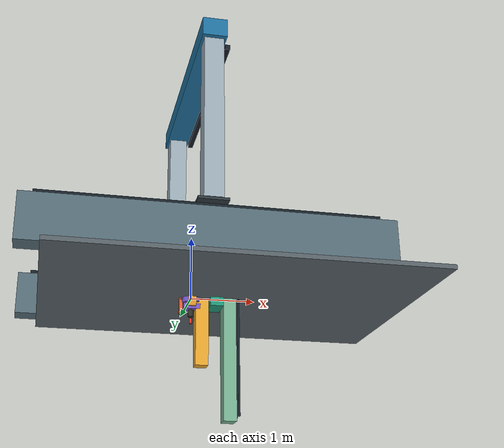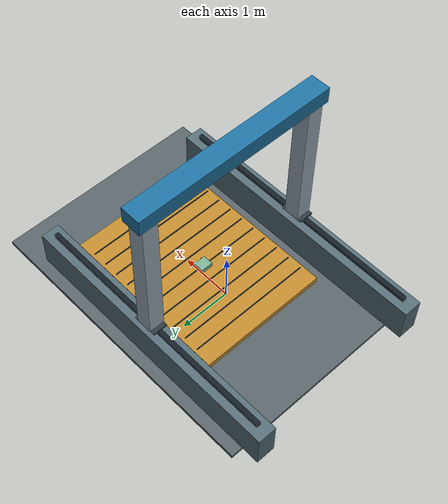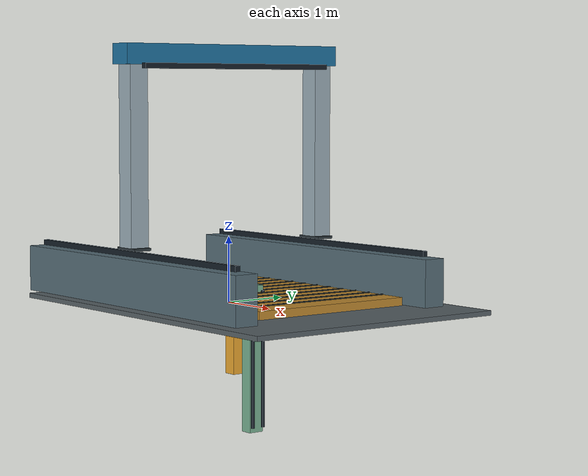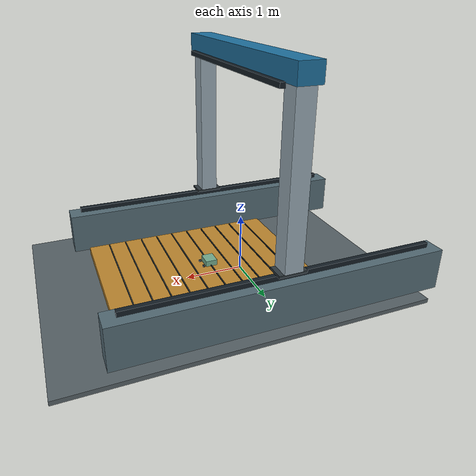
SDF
<?xml version="1.0" ?>
<sdf version="1.7">
  <model name="icax_gantry_ac5_machine">
    <static>false</static>

    <plugin name="icax_machine_control" filename="icax.machine.control">
      <linear_jog_step_mm>10</linear_jog_step_mm>
      <angular_jog_step_deg>1</angular_jog_step_deg>
    </plugin>

    <!-- Coordinate convention:
         X: beam forward/back, Y: spindle left/right, Z: spindle up/down.
         Kinematic chain: base -> X beam -> Y carriage -> Z slide -> C axis -> A axis -> laser head. -->

    <link name="base_link">
      <pose>0 0 0 0 0 0</pose>

      <visual name="floor_base_visual"><pose>0.55 0 0.035 0 0 0</pose><geometry><box><size>5.80 4.20 0.07</size></box></geometry><material><diffuse>0.34 0.38 0.40 1</diffuse><ambient>0.22 0.25 0.27 1</ambient></material></visual>
      <collision name="floor_base_collision"><pose>0.55 0 0.035 0 0 0</pose><geometry><box><size>5.80 4.20 0.07</size></box></geometry></collision>

      <visual name="work_table_visual"><pose>0.75 0 0.16 0 0 0</pose><geometry><box><size>3.40 2.60 0.12</size></box></geometry><material><diffuse>0.74 0.53 0.18 1</diffuse><ambient>0.46 0.34 0.12 1</ambient></material></visual>
      <collision name="work_table_collision"><pose>0.75 0 0.16 0 0 0</pose><geometry><box><size>3.40 2.60 0.12</size></box></geometry></collision>
      <visual name="table_slot_01_visual"><pose>-0.60 0 0.235 0 0 0</pose><geometry><box><size>0.018 2.48 0.015</size></box></geometry><material><diffuse>0.16 0.19 0.20 1</diffuse><ambient>0.10 0.12 0.13 1</ambient></material></visual>
      <visual name="table_slot_02_visual"><pose>-0.30 0 0.235 0 0 0</pose><geometry><box><size>0.018 2.48 0.015</size></box></geometry><material><diffuse>0.16 0.19 0.20 1</diffuse><ambient>0.10 0.12 0.13 1</ambient></material></visual>
      <visual name="table_slot_03_visual"><pose>0.00 0 0.235 0 0 0</pose><geometry><box><size>0.018 2.48 0.015</size></box></geometry><material><diffuse>0.16 0.19 0.20 1</diffuse><ambient>0.10 0.12 0.13 1</ambient></material></visual>
      <visual name="table_slot_04_visual"><pose>0.30 0 0.235 0 0 0</pose><geometry><box><size>0.018 2.48 0.015</size></box></geometry><material><diffuse>0.16 0.19 0.20 1</diffuse><ambient>0.10 0.12 0.13 1</ambient></material></visual>
      <visual name="table_slot_05_visual"><pose>0.60 0 0.235 0 0 0</pose><geometry><box><size>0.018 2.48 0.015</size></box></geometry><material><diffuse>0.16 0.19 0.20 1</diffuse><ambient>0.10 0.12 0.13 1</ambient></material></visual>
      <visual name="table_slot_06_visual"><pose>0.90 0 0.235 0 0 0</pose><geometry><box><size>0.018 2.48 0.015</size></box></geometry><material><diffuse>0.16 0.19 0.20 1</diffuse><ambient>0.10 0.12 0.13 1</ambient></material></visual>
      <visual name="table_slot_07_visual"><pose>1.20 0 0.235 0 0 0</pose><geometry><box><size>0.018 2.48 0.015</size></box></geometry><material><diffuse>0.16 0.19 0.20 1</diffuse><ambient>0.10 0.12 0.13 1</ambient></material></visual>
      <visual name="table_slot_08_visual"><pose>1.50 0 0.235 0 0 0</pose><geometry><box><size>0.018 2.48 0.015</size></box></geometry><material><diffuse>0.16 0.19 0.20 1</diffuse><ambient>0.10 0.12 0.13 1</ambient></material></visual>
      <visual name="table_slot_09_visual"><pose>1.80 0 0.235 0 0 0</pose><geometry><box><size>0.018 2.48 0.015</size></box></geometry><material><diffuse>0.16 0.19 0.20 1</diffuse><ambient>0.10 0.12 0.13 1</ambient></material></visual>
      <visual name="table_slot_10_visual"><pose>2.10 0 0.235 0 0 0</pose><geometry><box><size>0.018 2.48 0.015</size></box></geometry><material><diffuse>0.16 0.19 0.20 1</diffuse><ambient>0.10 0.12 0.13 1</ambient></material></visual>

      <visual name="left_x_base_visual"><pose>0 -1.70 0.42 0 0 0</pose><geometry><box><size>5.40 0.36 0.70</size></box></geometry><material><diffuse>0.33 0.42 0.46 1</diffuse><ambient>0.21 0.28 0.31 1</ambient></material></visual>
      <collision name="left_x_base_collision"><pose>0 -1.70 0.42 0 0 0</pose><geometry><box><size>5.40 0.36 0.70</size></box></geometry></collision>
      <visual name="right_x_base_visual"><pose>0 1.70 0.42 0 0 0</pose><geometry><box><size>5.40 0.36 0.70</size></box></geometry><material><diffuse>0.33 0.42 0.46 1</diffuse><ambient>0.21 0.28 0.31 1</ambient></material></visual>
      <collision name="right_x_base_collision"><pose>0 1.70 0.42 0 0 0</pose><geometry><box><size>5.40 0.36 0.70</size></box></geometry></collision>
      <visual name="left_x_rail_visual"><pose>0 -1.70 0.83 0 0 0</pose><geometry><box><size>5.00 0.08 0.08</size></box></geometry><material><diffuse>0.08 0.12 0.15 1</diffuse><ambient>0.05 0.08 0.10 1</ambient></material></visual>
      <collision name="left_x_rail_collision"><pose>0 -1.70 0.83 0 0 0</pose><geometry><box><size>5.00 0.08 0.08</size></box></geometry></collision>
      <visual name="right_x_rail_visual"><pose>0 1.70 0.83 0 0 0</pose><geometry><box><size>5.00 0.08 0.08</size></box></geometry><material><diffuse>0.08 0.12 0.15 1</diffuse><ambient>0.05 0.08 0.10 1</ambient></material></visual>
      <collision name="right_x_rail_collision"><pose>0 1.70 0.83 0 0 0</pose><geometry><box><size>5.00 0.08 0.08</size></box></geometry></collision>
    </link>

    <link name="x_beam_link">
      <pose>0 0 0 0 0 0</pose>
      <visual name="left_column_visual"><pose>0 -1.70 2.25 0 0 0</pose><geometry><box><size>0.30 0.30 2.64</size></box></geometry><material><diffuse>0.60 0.67 0.71 1</diffuse><ambient>0.38 0.43 0.47 1</ambient></material></visual>
      <collision name="left_column_collision"><pose>0 -1.70 2.25 0 0 0</pose><geometry><box><size>0.30 0.30 2.64</size></box></geometry></collision>
      <visual name="right_column_visual"><pose>0 1.70 2.25 0 0 0</pose><geometry><box><size>0.30 0.30 2.64</size></box></geometry><material><diffuse>0.60 0.67 0.71 1</diffuse><ambient>0.38 0.43 0.47 1</ambient></material></visual>
      <collision name="right_column_collision"><pose>0 1.70 2.25 0 0 0</pose><geometry><box><size>0.30 0.30 2.64</size></box></geometry></collision>
      <visual name="bridge_beam_visual"><pose>0 0 3.72 0 0 0</pose><geometry><box><size>0.38 3.85 0.30</size></box></geometry><material><diffuse>0.12 0.44 0.62 1</diffuse><ambient>0.08 0.28 0.40 1</ambient></material></visual>
      <collision name="bridge_beam_collision"><pose>0 0 3.72 0 0 0</pose><geometry><box><size>0.38 3.85 0.30</size></box></geometry></collision>
      <visual name="y_axis_rail_visual"><pose>0.24 0 3.55 0 0 0</pose><geometry><box><size>0.08 3.35 0.08</size></box></geometry><material><diffuse>0.08 0.12 0.15 1</diffuse><ambient>0.05 0.08 0.10 1</ambient></material></visual>
      <collision name="y_axis_rail_collision"><pose>0.24 0 3.55 0 0 0</pose><geometry><box><size>0.08 3.35 0.08</size></box></geometry></collision>
      <visual name="left_x_truck_visual"><pose>0 -1.70 0.91 0 0 0</pose><geometry><box><size>0.46 0.28 0.04</size></box></geometry><material><diffuse>0.18 0.22 0.24 1</diffuse><ambient>0.12 0.15 0.17 1</ambient></material></visual>
      <collision name="left_x_truck_collision"><pose>0 -1.70 0.91 0 0 0</pose><geometry><box><size>0.46 0.28 0.04</size></box></geometry></collision>
      <visual name="right_x_truck_visual"><pose>0 1.70 0.91 0 0 0</pose><geometry><box><size>0.46 0.28 0.04</size></box></geometry><material><diffuse>0.18 0.22 0.24 1</diffuse><ambient>0.12 0.15 0.17 1</ambient></material></visual>
      <collision name="right_x_truck_collision"><pose>0 1.70 0.91 0 0 0</pose><geometry><box><size>0.46 0.28 0.04</size></box></geometry></collision>
    </link>

    <link name="y_carriage_link">
      <pose>0 0 0 0 0 0</pose>
      <visual name="y_carriage_block_visual"><pose>0.38 0 0 0 0 0</pose><geometry><box><size>0.20 0.36 0.28</size></box></geometry><material><diffuse>0.12 0.58 0.46 1</diffuse><ambient>0.08 0.36 0.29 1</ambient></material></visual>
      <collision name="y_carriage_block_collision"><pose>0.38 0 0 0 0 0</pose><geometry><box><size>0.20 0.36 0.28</size></box></geometry></collision>
      <visual name="z_fixed_column_visual"><pose>0.59 0 -0.78 0 0 0</pose><geometry><box><size>0.20 0.24 2.20</size></box></geometry><material><diffuse>0.46 0.68 0.56 1</diffuse><ambient>0.29 0.43 0.35 1</ambient></material></visual>
      <collision name="z_fixed_column_collision"><pose>0.59 0 -0.78 0 0 0</pose><geometry><box><size>0.20 0.24 2.20</size></box></geometry></collision>
      <visual name="z_left_linear_rail_visual"><pose>0.725 -0.095 -0.78 0 0 0</pose><geometry><box><size>0.035 0.04 2.05</size></box></geometry><material><diffuse>0.08 0.12 0.15 1</diffuse><ambient>0.05 0.08 0.10 1</ambient></material></visual>
      <collision name="z_left_linear_rail_collision"><pose>0.725 -0.095 -0.78 0 0 0</pose><geometry><box><size>0.035 0.04 2.05</size></box></geometry></collision>
      <visual name="z_right_linear_rail_visual"><pose>0.725 0.095 -0.78 0 0 0</pose><geometry><box><size>0.035 0.04 2.05</size></box></geometry><material><diffuse>0.08 0.12 0.15 1</diffuse><ambient>0.05 0.08 0.10 1</ambient></material></visual>
      <collision name="z_right_linear_rail_collision"><pose>0.725 0.095 -0.78 0 0 0</pose><geometry><box><size>0.035 0.04 2.05</size></box></geometry></collision>
    </link>

    <link name="z_slide_link">
      <pose>0 0 0 0 0 0</pose>
      <visual name="z_slide_saddle_visual"><pose>0 0 0 0 0 0</pose><geometry><box><size>0.12 0.30 0.30</size></box></geometry><material><diffuse>0.84 0.57 0.16 1</diffuse><ambient>0.54 0.36 0.10 1</ambient></material></visual>
      <collision name="z_slide_saddle_collision"><pose>0 0 0 0 0 0</pose><geometry><box><size>0.12 0.30 0.30</size></box></geometry></collision>
      <visual name="z_spindle_ram_visual"><pose>0.16 0 -0.55 0 0 0</pose><geometry><box><size>0.20 0.20 1.02</size></box></geometry><material><diffuse>0.90 0.64 0.18 1</diffuse><ambient>0.58 0.40 0.11 1</ambient></material></visual>
      <collision name="z_spindle_ram_collision"><pose>0.16 0 -0.55 0 0 0</pose><geometry><box><size>0.20 0.20 1.02</size></box></geometry></collision>
    </link>

    <link name="c_axis_link">
      <pose>0 0 0 0 0 0</pose>
      <visual name="c_axis_rotor_visual"><pose>0 0 0 0 0 0</pose><geometry><cylinder><radius>0.15</radius><length>0.16</length></cylinder></geometry><material><diffuse>0.40 0.30 0.74 1</diffuse><ambient>0.25 0.19 0.47 1</ambient></material></visual>
      <collision name="c_axis_rotor_collision"><pose>0 0 0 0 0 0</pose><geometry><cylinder><radius>0.15</radius><length>0.16</length></cylinder></geometry></collision>
      <visual name="c_axis_lower_plate_visual"><pose>0 0 -0.145 0 0 0</pose><geometry><box><size>0.26 0.22 0.08</size></box></geometry><material><diffuse>0.47 0.34 0.78 1</diffuse><ambient>0.30 0.21 0.50 1</ambient></material></visual>
      <collision name="c_axis_lower_plate_collision"><pose>0 0 -0.145 0 0 0</pose><geometry><box><size>0.26 0.22 0.08</size></box></geometry></collision>
    </link>

    <link name="a_axis_link">
      <pose>0 0 0 0 0 0</pose>
      <visual name="a_axis_shaft_visual"><pose>0 0 0 0 1.57079632679 0</pose><geometry><cylinder><radius>0.055</radius><length>0.34</length></cylinder></geometry><material><diffuse>0.26 0.26 0.28 1</diffuse><ambient>0.16 0.16 0.18 1</ambient></material></visual>
      <collision name="a_axis_shaft_collision"><pose>0 0 0 0 1.57079632679 0</pose><geometry><cylinder><radius>0.055</radius><length>0.34</length></cylinder></geometry></collision>
      <visual name="a_yoke_left_visual"><pose>-0.16 0 -0.12 0 0 0</pose><geometry><box><size>0.055 0.08 0.26</size></box></geometry><material><diffuse>0.88 0.35 0.16 1</diffuse><ambient>0.56 0.22 0.10 1</ambient></material></visual>
      <collision name="a_yoke_left_collision"><pose>-0.16 0 -0.12 0 0 0</pose><geometry><box><size>0.055 0.08 0.26</size></box></geometry></collision>
      <visual name="a_yoke_right_visual"><pose>0.16 0 -0.12 0 0 0</pose><geometry><box><size>0.055 0.08 0.26</size></box></geometry><material><diffuse>0.88 0.35 0.16 1</diffuse><ambient>0.56 0.22 0.10 1</ambient></material></visual>
      <collision name="a_yoke_right_collision"><pose>0.16 0 -0.12 0 0 0</pose><geometry><box><size>0.055 0.08 0.26</size></box></geometry></collision>
    </link>

    <link name="laser_head_link">
      <pose>0 0 0 0 0 0</pose>
      <plugin name="icax_tool_tcp" filename="icax.machine.tool">
        <tool_name>Laser TCP</tool_name>
        <tool_type>laser_cutting_head</tool_type>
        <tcp_position_mm>0 0 -400</tcp_position_mm>
        <beam_direction>0 0 -1</beam_direction>
      </plugin>
      <visual name="laser_head_body_visual"><pose>0 0 0 0 0 0</pose><geometry><box><size>0.16 0.14 0.22</size></box></geometry><material><diffuse>0.93 0.76 0.22 1</diffuse><ambient>0.60 0.48 0.14 1</ambient></material></visual>
      <collision name="laser_head_body_collision"><pose>0 0 0 0 0 0</pose><geometry><box><size>0.16 0.14 0.22</size></box></geometry></collision>
      <visual name="laser_nozzle_visual"><pose>0 0 -0.21 0 0 0</pose><geometry><cylinder><radius>0.045</radius><length>0.16</length></cylinder></geometry><material><diffuse>0.18 0.18 0.16 1</diffuse><ambient>0.12 0.12 0.11 1</ambient></material></visual>
      <collision name="laser_nozzle_collision"><pose>0 0 -0.21 0 0 0</pose><geometry><cylinder><radius>0.045</radius><length>0.16</length></cylinder></geometry></collision>
      <visual name="laser_tip_visual"><pose>0 0 -0.36 0 0 0</pose><geometry><cylinder><radius>0.022</radius><length>0.08</length></cylinder></geometry><material><diffuse>0.86 0.18 0.14 1</diffuse><ambient>0.55 0.10 0.08 1</ambient></material></visual>
      <collision name="laser_tip_collision"><pose>0 0 -0.36 0 0 0</pose><geometry><cylinder><radius>0.022</radius><length>0.08</length></cylinder></geometry></collision>
    </link>

    <joint name="x_axis" type="prismatic">
      <parent>base_link</parent>
      <child>x_beam_link</child>
      <pose>0 0 0 0 0 0</pose>
      <axis><xyz>1 0 0</xyz><limit><lower>-2.20</lower><upper>1.20</upper></limit></axis>
    </joint>

    <joint name="y_axis" type="prismatic">
      <parent>x_beam_link</parent>
      <child>y_carriage_link</child>
      <pose>0 0 3.55 0 0 0</pose>
      <axis><xyz>0 1 0</xyz><limit><lower>-1.15</lower><upper>1.15</upper></limit></axis>
    </joint>

    <joint name="z_axis" type="prismatic">
      <parent>y_carriage_link</parent>
      <child>z_slide_link</child>
      <pose>0.83 0 -0.54 0 0 0</pose>
      <axis><xyz>0 0 1</xyz><limit><lower>-1.10</lower><upper>0.20</upper></limit></axis>
    </joint>

    <joint name="c_axis" type="revolute">
      <parent>z_slide_link</parent>
      <child>c_axis_link</child>
      <pose>0.16 0 -1.04 0 0 0</pose>
      <axis><xyz>0 0 1</xyz><limit><lower>-3.14159265359</lower><upper>3.14159265359</upper></limit></axis>
    </joint>

    <joint name="a_axis" type="revolute">
      <parent>c_axis_link</parent>
      <child>a_axis_link</child>
      <pose>0 0 -0.28 0 0 0</pose>
      <axis><xyz>1 0 0</xyz><limit><lower>-2.35619449019</lower><upper>2.35619449019</upper></limit></axis>
    </joint>

    <joint name="laser_head_fixed" type="fixed">
      <parent>a_axis_link</parent>
      <child>laser_head_link</child>
      <pose>0 0 -0.28 0 0 0</pose>
    </joint>
  </model>
</sdf>
